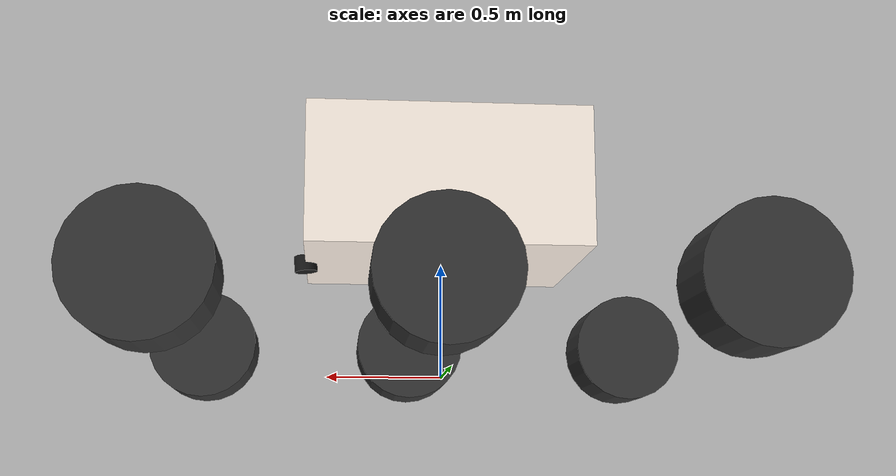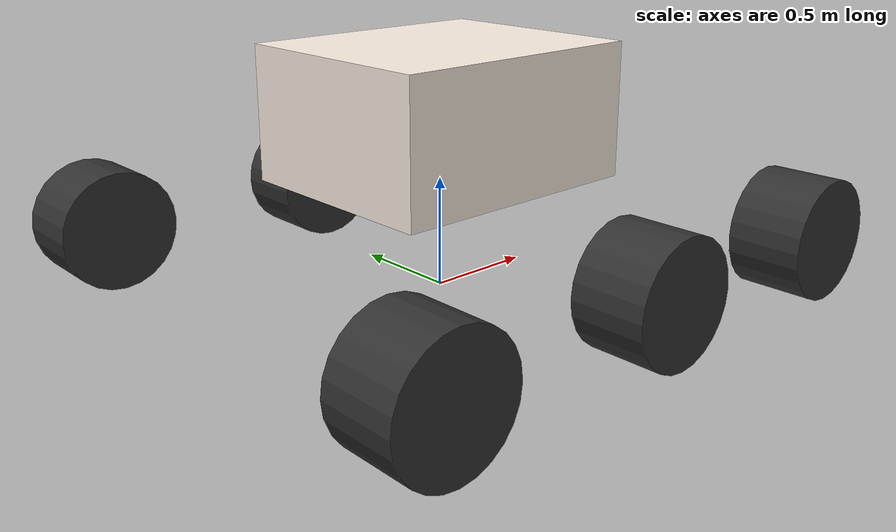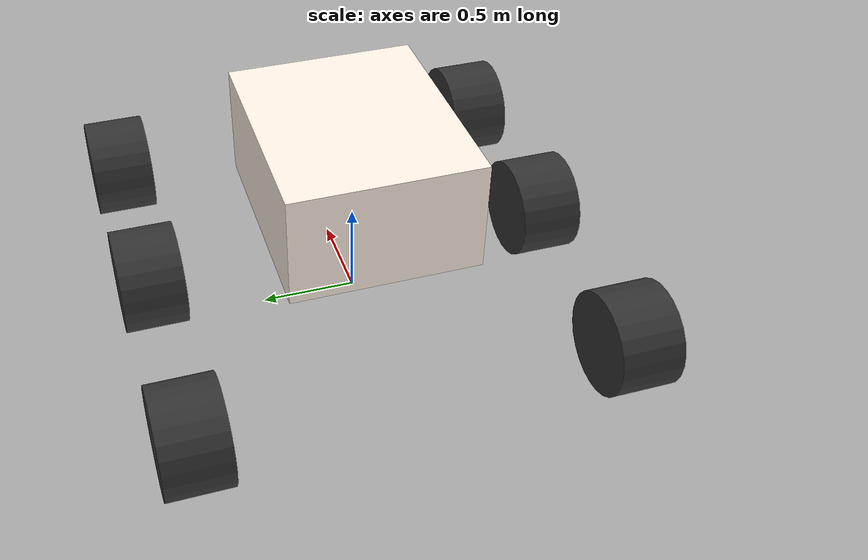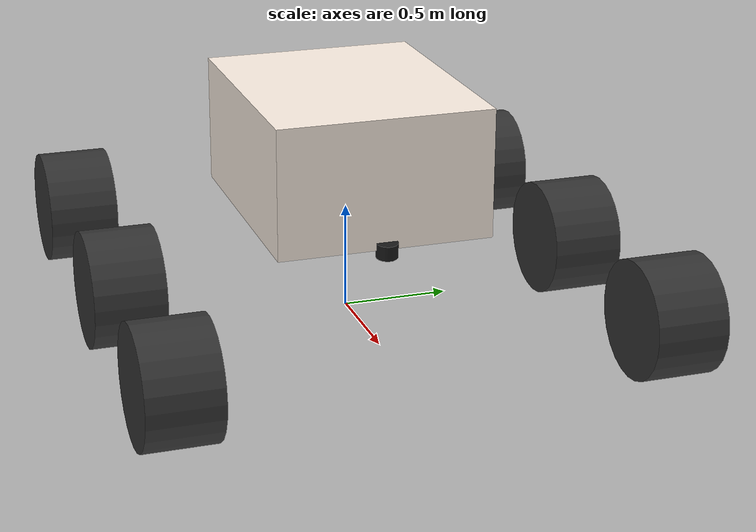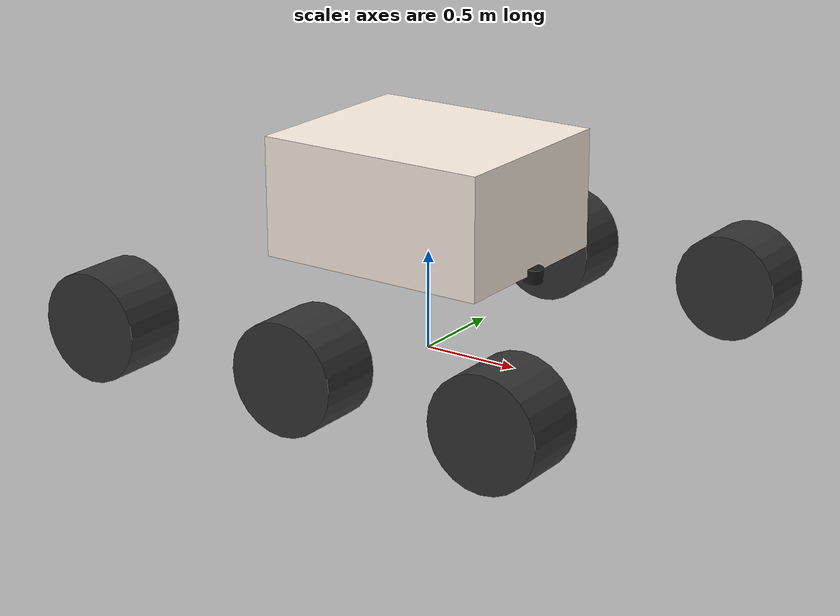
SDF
<?xml version="1.0" ?>
<sdf version="1.9">
  <model name="rover">
    <link name="base_link">
      <pose>0 0 0.8 0 0 0</pose>
      <inertial>
        <mass>500</mass>
        <inertia>
          <ixx>5</ixx><ixy>0</ixy><ixz>0</ixz>
          <iyy>12</iyy><iyz>0</iyz>
          <izz>10</izz>
        </inertia>
      </inertial>
      <collision name="base_link_collision">
        <geometry>
          <box><size>1.2 1.0 0.6</size></box>
        </geometry>
        <surface>
          <friction>
            <ode><mu>0.5</mu><mu2>1.0</mu2></ode>
          </friction>
        </surface>
      </collision>
      <visual name="base_visual">
        <geometry>
          <box><size>1.2 1.0 0.6</size></box>
        </geometry>
        <material>
          <ambient>0.9 0.85 0.8 1</ambient>
          <diffuse>1 0.95 0.9 1</diffuse>
        </material>
      </visual>
    </link>

    <link name="left_wheel1">
      <pose>1.14 -1.1 0.26 0 0 0</pose>
      <inertial><mass>10</mass><inertia><ixx>0.1</ixx><ixy>0</ixy><ixz>0</ixz><iyy>0.1</iyy><iyz>0</iyz><izz>0.1</izz></inertia></inertial>
      <collision name="left_wheel1_collision">
        <pose>0 0 0 -1.5708 0 0</pose>
        <geometry><cylinder><radius>0.27</radius><length>0.33</length></cylinder></geometry>
        <surface>
          <friction>
            <ode>
              <mu>2.0</mu><mu2>2.0</mu2>
              <slip1>0</slip1><slip2>0</slip2>
              <fdir1>0 0 1</fdir1>
            </ode>
          </friction>
          <contact>
            <ode><kp>1e7</kp><kd>1</kd></ode>
          </contact>
        </surface>
      </collision>
      <visual name="left_wheel1_visual">
        <pose>0 0 0 -1.5708 0 0</pose>
        <geometry><cylinder><radius>0.27</radius><length>0.33</length></cylinder></geometry>
        <material>
          <ambient>0.1 0.1 0.1 1</ambient>
          <diffuse>0.2 0.2 0.2 1</diffuse>
        </material>
      </visual>
    </link>

    <link name="left_wheel2">
      <pose>0.08 -1.1 0.26 0 0 0</pose>
      <inertial><mass>10</mass><inertia><ixx>0.1</ixx><ixy>0</ixy><ixz>0</ixz><iyy>0.1</iyy><iyz>0</iyz><izz>0.1</izz></inertia></inertial>
      <collision name="left_wheel2_collision">
        <pose>0 0 0 -1.5708 0 0</pose>
        <geometry><cylinder><radius>0.27</radius><length>0.33</length></cylinder></geometry>
        <surface>
          <friction>
            <ode>
              <mu>1.5</mu><mu2>2.0</mu2>
              <slip1>0</slip1><slip2>0</slip2>
              <fdir1>0 0 1</fdir1>
            </ode>
          </friction>
          <contact>
            <ode><kp>1e7</kp><kd>1</kd></ode>
          </contact>
        </surface>
      </collision>
      <visual name="left_wheel2_visual">
        <pose>0 0 0 -1.5708 0 0</pose>
        <geometry><cylinder><radius>0.27</radius><length>0.33</length></cylinder></geometry>
        <material>
          <ambient>0.1 0.1 0.1 1</ambient>
          <diffuse>0.2 0.2 0.2 1</diffuse>
        </material>
      </visual>
    </link>

    <link name="left_wheel3">
      <pose>-1.07 -1.1 0.26 0 0 0</pose>
      <inertial><mass>10</mass><inertia><ixx>0.1</ixx><ixy>0</ixy><ixz>0</ixz><iyy>0.1</iyy><iyz>0</iyz><izz>0.1</izz></inertia></inertial>
      <collision name="left_wheel3_collision">
        <pose>0 0 0 -1.5708 0 0</pose>
        <geometry><cylinder><radius>0.27</radius><length>0.33</length></cylinder></geometry>
        <surface>
          <friction>
            <ode>
              <mu>2.0</mu><mu2>2.0</mu2>
              <slip1>0</slip1><slip2>0</slip2>
              <fdir1>0 0 1</fdir1>
            </ode>
          </friction>
          <contact>
            <ode><kp>1e7</kp><kd>1</kd></ode>
          </contact>
        </surface>
      </collision>
      <visual name="left_wheel3_visual">
        <pose>0 0 0 -1.5708 0 0</pose>
        <geometry><cylinder><radius>0.27</radius><length>0.33</length></cylinder></geometry>
        <material>
          <ambient>0.1 0.1 0.1 1</ambient>
          <diffuse>0.2 0.2 0.2 1</diffuse>
        </material>
      </visual>
    </link>

    <link name="right_wheel1">
      <pose>1.14 1.1 0.26 0 0 0</pose>
      <inertial><mass>10</mass><inertia><ixx>0.1</ixx><ixy>0</ixy><ixz>0</ixz><iyy>0.1</iyy><iyz>0</iyz><izz>0.1</izz></inertia></inertial>
      <collision name="right_wheel1_collision">
        <pose>0 0 0 -1.5708 0 0</pose>
        <geometry><cylinder><radius>0.27</radius><length>0.33</length></cylinder></geometry>
        <surface>
          <friction>
            <ode>
              <mu>2.0</mu><mu2>2.0</mu2>
              <slip1>0</slip1><slip2>0</slip2>
              <fdir1>0 0 1</fdir1>
            </ode>
          </friction>
          <contact>
            <ode><kp>1e7</kp><kd>1</kd></ode>
          </contact>
        </surface>
      </collision>
      <visual name="right_wheel1_visual">
        <pose>0 0 0 -1.5708 0 0</pose>
        <geometry><cylinder><radius>0.27</radius><length>0.33</length></cylinder></geometry>
        <material>
          <ambient>0.1 0.1 0.1 1</ambient>
          <diffuse>0.2 0.2 0.2 1</diffuse>
        </material>
      </visual>
    </link>

    <link name="right_wheel2">
      <pose>0.08 1.1 0.26 0 0 0</pose>
      <inertial><mass>10</mass><inertia><ixx>0.1</ixx><ixy>0</ixy><ixz>0</ixz><iyy>0.1</iyy><iyz>0</iyz><izz>0.1</izz></inertia></inertial>
      <collision name="right_wheel2_collision">
        <pose>0 0 0 -1.5708 0 0</pose>
        <geometry><cylinder><radius>0.27</radius><length>0.33</length></cylinder></geometry>
        <surface>
          <friction>
            <ode>
              <mu>1.5</mu><mu2>2.0</mu2>
              <slip1>0</slip1><slip2>0</slip2>
              <fdir1>0 0 1</fdir1>
            </ode>
          </friction>
          <contact>
            <ode><kp>1e7</kp><kd>1</kd></ode>
          </contact>
        </surface>
      </collision>
      <visual name="right_wheel2_visual">
        <pose>0 0 0 -1.5708 0 0</pose>
        <geometry><cylinder><radius>0.27</radius><length>0.33</length></cylinder></geometry>
        <material>
          <ambient>0.1 0.1 0.1 1</ambient>
          <diffuse>0.2 0.2 0.2 1</diffuse>
        </material>
      </visual>
    </link>

    <link name="right_wheel3">
      <pose>-1.07 1.1 0.26 0 0 0</pose>
      <inertial><mass>10</mass><inertia><ixx>0.1</ixx><ixy>0</ixy><ixz>0</ixz><iyy>0.1</iyy><iyz>0</iyz><izz>0.1</izz></inertia></inertial>
      <collision name="right_wheel3_collision">
        <pose>0 0 0 -1.5708 0 0</pose>
        <geometry><cylinder><radius>0.27</radius><length>0.33</length></cylinder></geometry>
        <surface>
          <friction>
            <ode>
              <mu>2.0</mu><mu2>2.0</mu2>
              <slip1>0</slip1><slip2>0</slip2>
              <fdir1>0 0 1</fdir1>
            </ode>
          </friction>
          <contact>
            <ode><kp>1e7</kp><kd>1</kd></ode>
          </contact>
        </surface>
      </collision>
      <visual name="right_wheel3_visual">
        <pose>0 0 0 -1.5708 0 0</pose>
        <geometry><cylinder><radius>0.27</radius><length>0.33</length></cylinder></geometry>
        <material>
          <ambient>0.1 0.1 0.1 1</ambient>
          <diffuse>0.2 0.2 0.2 1</diffuse>
        </material>
      </visual>
    </link>

    <joint name="left_wheel1_j" type="revolute">
      <parent>base_link</parent>
      <child>left_wheel1</child>
      <axis>
        <xyz expressed_in="__model__">0 1 0</xyz>
        <limit><lower>-1e16</lower><upper>1e16</upper></limit>
      </axis>
    </joint>
    <joint name="left_wheel2_j" type="revolute">
      <parent>base_link</parent>
      <child>left_wheel2</child>
      <axis>
        <xyz expressed_in="__model__">0 1 0</xyz>
        <limit><lower>-1e16</lower><upper>1e16</upper></limit>
      </axis>
    </joint>
    <joint name="left_wheel3_j" type="revolute">
      <parent>base_link</parent>
      <child>left_wheel3</child>
      <axis>
        <xyz expressed_in="__model__">0 1 0</xyz>
        <limit><lower>-1e16</lower><upper>1e16</upper></limit>
      </axis>
    </joint>
    <joint name="right_wheel1_j" type="revolute">
      <parent>base_link</parent>
      <child>right_wheel1</child>
      <axis>
        <xyz expressed_in="__model__">0 1 0</xyz>
        <limit><lower>-1e16</lower><upper>1e16</upper></limit>
      </axis>
    </joint>
    <joint name="right_wheel2_j" type="revolute">
      <parent>base_link</parent>
      <child>right_wheel2</child>
      <axis>
        <xyz expressed_in="__model__">0 1 0</xyz>
        <limit><lower>-1e16</lower><upper>1e16</upper></limit>
      </axis>
    </joint>
    <joint name="right_wheel3_j" type="revolute">
      <parent>base_link</parent>
      <child>right_wheel3</child>
      <axis>
        <xyz expressed_in="__model__">0 1 0</xyz>
        <limit><lower>-1e16</lower><upper>1e16</upper></limit>
      </axis>
    </joint>

    <plugin filename="gz-sim-diff-drive-system" name="gz::sim::systems::DiffDrive">
      <left_joint>left_wheel1_j</left_joint>
      <left_joint>left_wheel2_j</left_joint>
      <left_joint>left_wheel3_j</left_joint>
      <right_joint>right_wheel1_j</right_joint>
      <right_joint>right_wheel2_j</right_joint>
      <right_joint>right_wheel3_j</right_joint>
      <wheel_separation>2.2</wheel_separation>
      <wheel_radius>0.27</wheel_radius>
      <topic>/rover/cmd_vel</topic>
      <odom_topic>/rover/odometry</odom_topic>
      <tf_topic>/rover/tf</tf_topic>
      <frame_id>odom</frame_id>
      <child_frame_id>base_link</child_frame_id>
      <odom_publish_frequency>20</odom_publish_frequency>
    </plugin>

    <plugin filename="gz-sim-joint-state-publisher-system" name="gz::sim::systems::JointStatePublisher">
      <topic>/rover/joint_states</topic>
    </plugin>

    <!-- LiDAR sensor link — mounted at front chassis edge -->
    <link name="lidar_link">
      <!--
        Mounted at z=0.5 (front bottom edge) with 5 deg tilt
      -->
      <pose>0.6 0 0.5 0 0.087 0</pose>

      <inertial>
        <mass>0.1</mass>
        <inertia>
          <ixx>0.000041</ixx><ixy>0</ixy><ixz>0</ixz>
          <iyy>0.000041</iyy><iyz>0</iyz>
          <izz>0.000080</izz>
        </inertia>
      </inertial>

      <visual name="lidar_visual">
        <geometry>
          <cylinder><radius>0.05</radius><length>0.07</length></cylinder>
        </geometry>
        <material>
          <ambient>0.1 0.1 0.1 1</ambient>
          <diffuse>0.1 0.1 0.1 1</diffuse>
        </material>
      </visual>

      <collision name="lidar_collision">
        <geometry>
          <cylinder><radius>0.05</radius><length>0.07</length></cylinder>
        </geometry>
      </collision>

      <sensor name="lidar" type="gpu_lidar">
        <topic>/scan</topic>
        <update_rate>10</update_rate>
        <alwaysOn>1</alwaysOn>
        <visualize>true</visualize>
        <gz_frame_id>lidar_link</gz_frame_id>
        <lidar>
          <scan>
            <horizontal>
              <samples>360</samples>
              <resolution>1</resolution>
              <min_angle>-3.14159</min_angle>
              <max_angle>3.14159</max_angle>
            </horizontal>
            <vertical>
              <samples>1</samples>
              <resolution>1</resolution>
              <min_angle>0</min_angle>
              <max_angle>0</max_angle>
            </vertical>
          </scan>
          <range>
            <min>0.15</min>
            <max>12.0</max>
            <resolution>0.01</resolution>
          </range>
          <noise>
            <type>gaussian</type>
            <mean>0.0</mean>
            <stddev>0.015</stddev>
          </noise>
        </lidar>
      </sensor>
    </link>

    <!-- Fixed joint attaching LiDAR to rover chassis -->
    <joint name="lidar_joint" type="fixed">
      <parent>base_link</parent>
      <child>lidar_link</child>
    </joint>
  </model>
</sdf>
